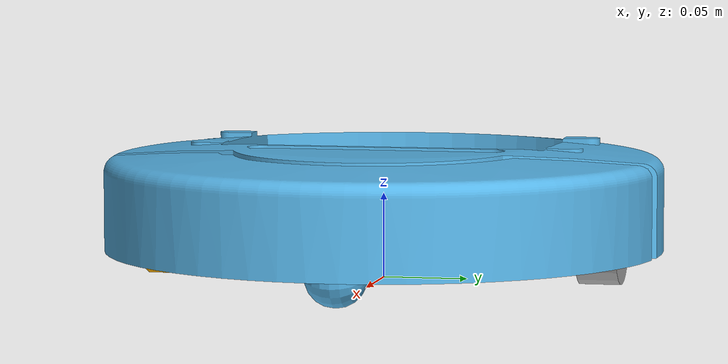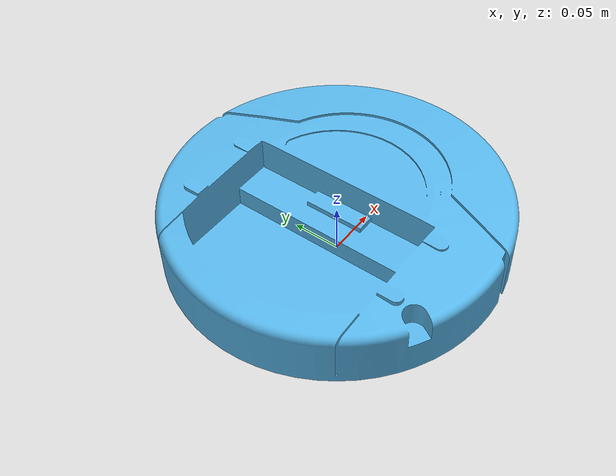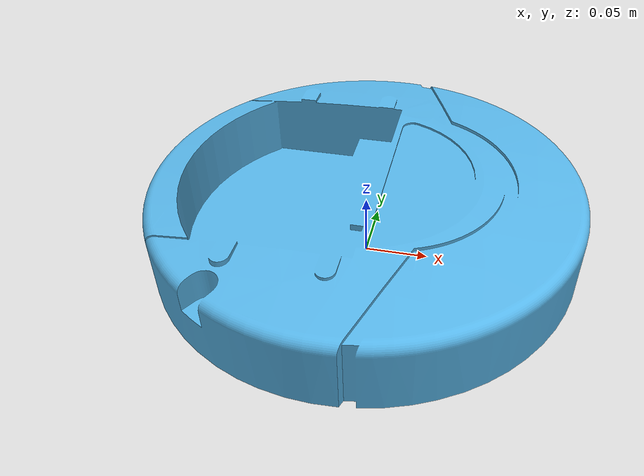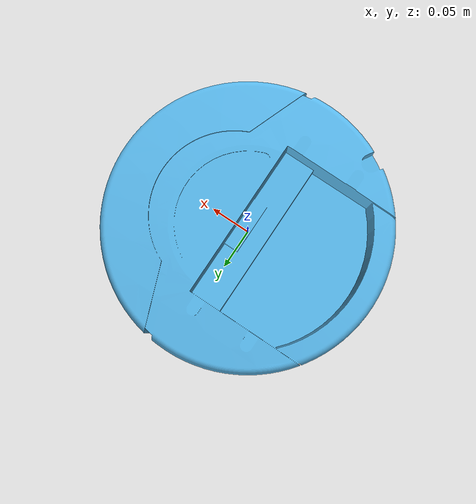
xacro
<?xml version="1.0" ?>
<robot xmlns:xacro="http://ros.org/wiki/xacro" name="create">
  <xacro:include filename="$(find create_description)/urdf/create_base.urdf.xacro" />

  <xacro:create_base base_radius="0.3302" wheel_separation="0.26" wheel_radius="0.033">
    <mesh filename="package://create_description/meshes/create_1.dae" />
  </xacro:create_base>
</robot>

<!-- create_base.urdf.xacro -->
<robot xmlns:xacro="http://ros.org/wiki/xacro" name="create_base">
  <xacro:property name="PI" value="3.1415926535897931" />

  <xacro:macro name="create_wheel" params="prefix y_offset wheel_radius wheel_width">
    <link name="${prefix}_wheel_link">
      <inertial>
        <origin xyz="0 0 0" />
        <mass value="0.01" />
        <inertia ixx="0.001" ixy="0.0" ixz="0.0" iyy="0.001" iyz="0.0" izz="0.001" />
      </inertial>

      <visual>
        <origin xyz="0 0 0" rpy="0 ${PI/2} ${PI/2}" />
        <geometry>
          <cylinder radius="${wheel_radius}" length="${wheel_width}" />
        </geometry>
      </visual>

      <collision>
        <origin xyz="0 0 0" rpy="0 ${PI / 2} ${PI / 2}" />
        <geometry>
          <cylinder radius="${wheel_radius}" length="${wheel_width}" />
        </geometry>
      </collision>
    </link>

    <joint name="${prefix}_wheel_joint" type="continuous">
      <origin xyz="0 ${y_offset} 0.015" rpy="0 0 0" />
      <parent link="base_link" />
      <child link="${prefix}_wheel_link" />
      <axis xyz="0 1 0" />
    </joint>
  </xacro:macro>

  <xacro:macro name="create_base" params="base_radius wheel_separation wheel_radius rear_castor:=false wheel_width:=0.024 wheel_torque:=1.0 wheel_accel:=1.8 mass_kg:=3.5 *mesh">
    <xacro:include filename="$(find create_description)/urdf/create_base_gazebo.urdf.xacro" />
      <link name="base_footprint">
      <visual>
        <origin xyz="0 0 0" rpy="0 0 0" />
        <geometry>
          <box size="0.001 0.001 0.001" />
        </geometry>
        <material name="Green" />
      </visual>

      <collision>
        <origin xyz="0 0 0.017" rpy="0 0 0" />
        <geometry>
          <box size="0.001 0.001 0.001" />
        </geometry>
      </collision>
    </link>

    <link name="base_link">
      <inertial>
        <mass value="2" />
        <origin xyz="0 0 0.0" />
        <inertia ixx="0.01" ixy="0.0" ixz="0.0" iyy="0.01" iyz="0.0" izz="0.5" />
      </inertial>

      <visual>
        <origin xyz=" 0 0 0.0308" rpy="0 0 0" />
        <geometry>
          <xacro:insert_block name="mesh" />
        </geometry>
      </visual>

      <collision>
        <origin xyz="0.0 0.0 0.0308" rpy="0 0 0" />
        <geometry>
          <cylinder length="0.0611632" radius="${base_radius}" />
        </geometry>
      </collision>
    </link>

    <link name="wall_sensor_link">
      <inertial>
        <mass value="0.01" />
        <origin xyz="0 0 0" />
        <inertia ixx="0.001" ixy="0.0" ixz="0.0" iyy="0.001" iyz="0.0" izz="0.001" />
      </inertial>
    </link>

    <link name="left_cliff_sensor_link">
      <inertial>
        <mass value="0.01" />
        <origin xyz="0 0 0" />
        <inertia ixx="0.001" ixy="0.0" ixz="0.0" iyy="0.001" iyz="0.0" izz="0.001" />
      </inertial>
    </link>

    <link name="right_cliff_sensor_link">
      <inertial>
        <mass value="0.01" />
        <origin xyz="0 0 0" />
        <inertia ixx="0.001" ixy="0.0" ixz="0.0" iyy="0.001" iyz="0.0" izz="0.001" />
      </inertial>
    </link>

    <link name="leftfront_cliff_sensor_link">
      <inertial>
        <mass value="0.01" />
        <origin xyz="0 0 0" />
        <inertia ixx="1.0" ixy="0.0" ixz="0.0" iyy="0.01" iyz="0.0" izz="0.01" />
      </inertial>
    </link>

    <link name="rightfront_cliff_sensor_link">
      <inertial>
        <mass value="0.01" />
        <origin xyz="0 0 0" />
        <inertia ixx="0.001" ixy="0.0" ixz="0.0" iyy="0.001" iyz="0.0" izz="0.001" />
      </inertial>
    </link>

    <joint name="base_footprint_joint" type="fixed">
      <origin xyz="0 0 0.017" rpy="0 0 0" />
      <parent link="base_footprint" />
      <child link="base_link" />
    </joint>

    <joint name="base_wall_sensor_joint" type="fixed">
      <origin xyz="0.09 -0.120 0.042" rpy="0 0 -1.0" />
      <parent link="base_link" />
      <child link="wall_sensor_link" />
    </joint>

    <joint name="base_left_cliff_sensor_joint" type="fixed">
      <origin xyz="0.07 0.14 0.01" rpy="0 ${PI / 2} 0" />
      <parent link="base_link" />
      <child link="left_cliff_sensor_link" />
    </joint>

    <joint name="base_right_cliff_sensor_joint" type="fixed">
      <origin xyz="0.07 -0.14 0.01" rpy="0 ${PI / 2} 0" />
      <parent link="base_link" />
      <child link="right_cliff_sensor_link" />
    </joint>

    <joint name="base_leftfront_cliff_sensor_joint" type="fixed">
      <origin xyz="0.15 0.04 0.01" rpy="0 ${PI / 2} 0" />
      <parent link="base_link" />
      <child link="leftfront_cliff_sensor_link" />
    </joint>

    <joint name="base_rightfront_cliff_sensor_joint" type="fixed">
      <origin xyz="0.15 -0.04 0.01" rpy="0 ${PI / 2} 0" />
      <parent link="base_link" />
      <child link="rightfront_cliff_sensor_link" />
    </joint>

    <xacro:create_wheel prefix="left" y_offset="${wheel_separation / 2}" wheel_radius="${wheel_radius}" wheel_width="${wheel_width}"/>
    <xacro:create_wheel prefix="right" y_offset="${wheel_separation / -2}" wheel_radius="${wheel_radius}" wheel_width="${wheel_width}"/>

    <!-- Rear wheel is not present on Create 2 and optional on Create 1 -->
    <xacro:if value="${rear_castor}">
      <link name="rear_wheel_link">
        <inertial>
          <origin xyz="0 0 0" />
          <mass value="0.001" />
          <inertia ixx="0.0001" ixy="0.0" ixz="0.0" iyy="0.0001" iyz="0.0" izz="0.0001" />
        </inertial>

        <visual>
          <origin xyz="0 0 0" rpy="0 ${PI / 2} ${PI / 2}" />
          <geometry>
            <sphere radius="0.015" />
          </geometry>
        </visual>

        <collision>
          <origin xyz="0 0 0" rpy="0 ${PI / 2} ${PI / 2}" />
          <geometry>
            <sphere radius="0.015" />
          </geometry>
        </collision>
      </link>

      <joint name="rear_castor_joint" type="fixed">
        <origin xyz="-0.13 0 0.0" rpy="0 0 0" />
        <parent link="base_link" />
        <child link="rear_wheel_link" />
        <axis xyz="0 1 0" />
      </joint>
    </xacro:if>

    <link name="front_wheel_link">
      <inertial>
        <origin xyz="0 0 0" />
        <mass value="0.01" />
        <inertia ixx="0.001" ixy="0.0" ixz="0.0" iyy="0.001" iyz="0.0" izz="0.001" />
      </inertial>

      <visual>
        <origin xyz="0 0 0" rpy="0 ${PI / 2} ${PI / 2}" />
        <geometry>
          <sphere radius="0.018" />
        </geometry>
      </visual>

      <collision>
        <origin xyz="0 0 0" rpy="0 ${PI / 2} ${PI / 2}" />
        <geometry>
          <sphere radius="0.018" />
        </geometry>
      </collision>
    </link>

    <!-- fixed because there's no transmission -->
    <joint name="front_castor_joint" type="fixed">
      <origin xyz="0.13 0 0.0" rpy="0 0 0" />
      <parent link="base_link" />
      <child link="front_wheel_link" />
      <axis xyz="0 1 0" />
    </joint>

    <!-- Simulation sensors -->
    <xacro:sim_create_base wheel_diameter="${wheel_radius * 2}" wheel_separation="${wheel_separation}" />
    <xacro:sim_create_wall_sensor />
    <xacro:sim_create_cliff_sensors />
  </xacro:macro>
</robot>
